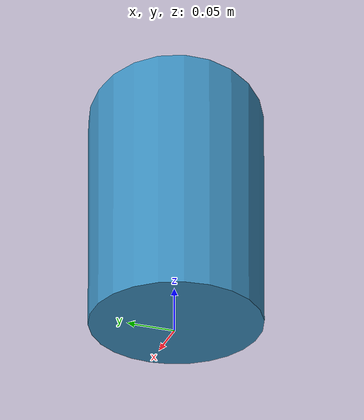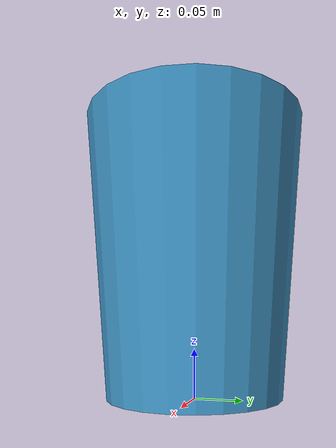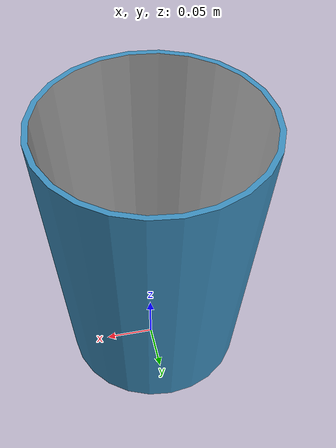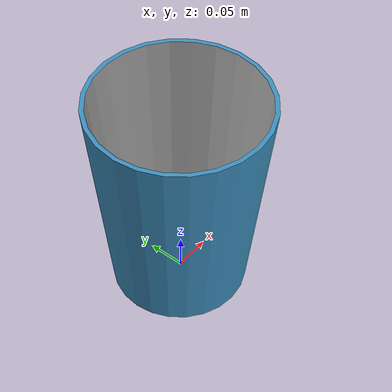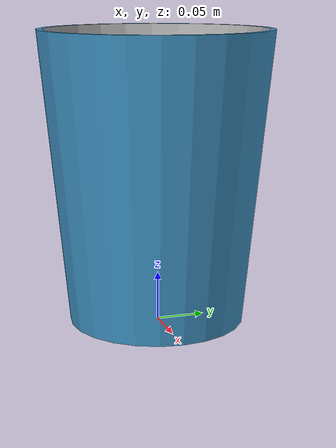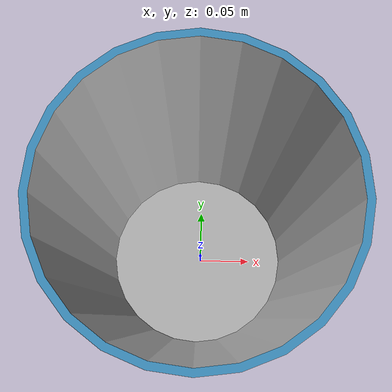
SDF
<?xml version='1.0'?>
<sdf version='1.6'>
  <model name='trash_bin'>
    <link name='link_0'>
      <pose frame=''>0 0 0 0 -0 0</pose>
        <visual name='visual'>
        <pose frame=''>0 0 0 0 -0 0</pose>
        <geometry>
          <mesh>
            <uri>file:///home/luca/catkin_ws/src/git/manipulator_common/manipulator_gazebo_plugin/models/trash_bin/meshes/outer.dae</uri>
            <scale>0.6 0.6 0.6</scale>
          </mesh>
        </geometry>
        <material>
          <lighting>1</lighting>
            <ambient>0.235 0.556 0.741 1</ambient>
          <diffuse>0.235 0.556 0.741 1</diffuse>
          <specular>0.01 0.01 0.01 1</specular>
          <emissive>0 0 0 1</emissive>
          <shader type='vertex'>
            <normal_map>__default__</normal_map>
          </shader>
        </material>
        <cast_shadows>1</cast_shadows>
        <transparency>0</transparency>
      </visual>
      <collision name='collision'>
        <laser_retro>0</laser_retro>
        <max_contacts>10</max_contacts>
        <pose frame=''>0 0 0 0 -0 0</pose>
        <geometry>
          <mesh>
            <uri>file:///home/luca/catkin_ws/src/git/manipulator_common/manipulator_gazebo_plugin/models/trash_bin/meshes/outer.dae</uri>
            <scale>0.6 0.6 0.6</scale>
          </mesh>
        </geometry>
       </collision>
    </link>
    <link name='link_1'>
      <pose frame=''>0 0 0 0 -0 0</pose>
       <visual name='visual'>
        <pose frame=''>0 0 0 0 -0 0</pose>
        <geometry>
          <mesh>
            <uri>file:///home/luca/catkin_ws/src/git/manipulator_common/manipulator_gazebo_plugin/models/trash_bin/meshes/inner.dae</uri>
            <scale>0.6 0.6 0.6</scale>
          </mesh>
        </geometry>
        <material>
          <lighting>1</lighting>
            <ambient>0.9 0.9 0.9 1</ambient>
          <diffuse>0.7 0.7 0.7 1</diffuse>
          <specular>0.01 0.01 0.01 1</specular>
          <emissive>0 0 0 1</emissive>
          <shader type='vertex'>
            <normal_map>__default__</normal_map>
          </shader>
        </material>
        <cast_shadows>1</cast_shadows>
        <transparency>0</transparency>
      </visual>
      <collision name='collision'>
        <laser_retro>0</laser_retro>
        <max_contacts>10</max_contacts>
        <pose frame=''>0 0 0 0 -0 0</pose>
        <geometry>
          <mesh>
            <uri>file:///home/luca/catkin_ws/src/git/manipulator_common/manipulator_gazebo_plugin/models/trash_bin/meshes/inner.dae</uri>
            <scale>0.6 0.6 0.6</scale>
          </mesh>
        </geometry>
        </collision>
    </link>
    <static>1</static>
    <allow_auto_disable>1</allow_auto_disable>
  </model>
</sdf>
